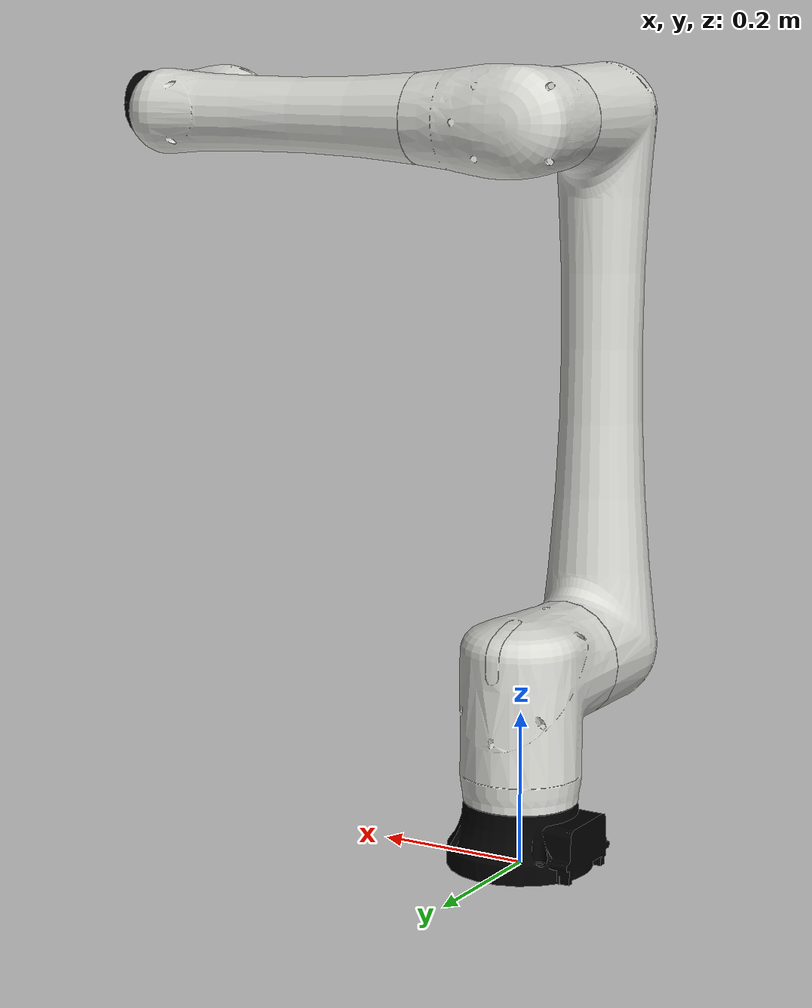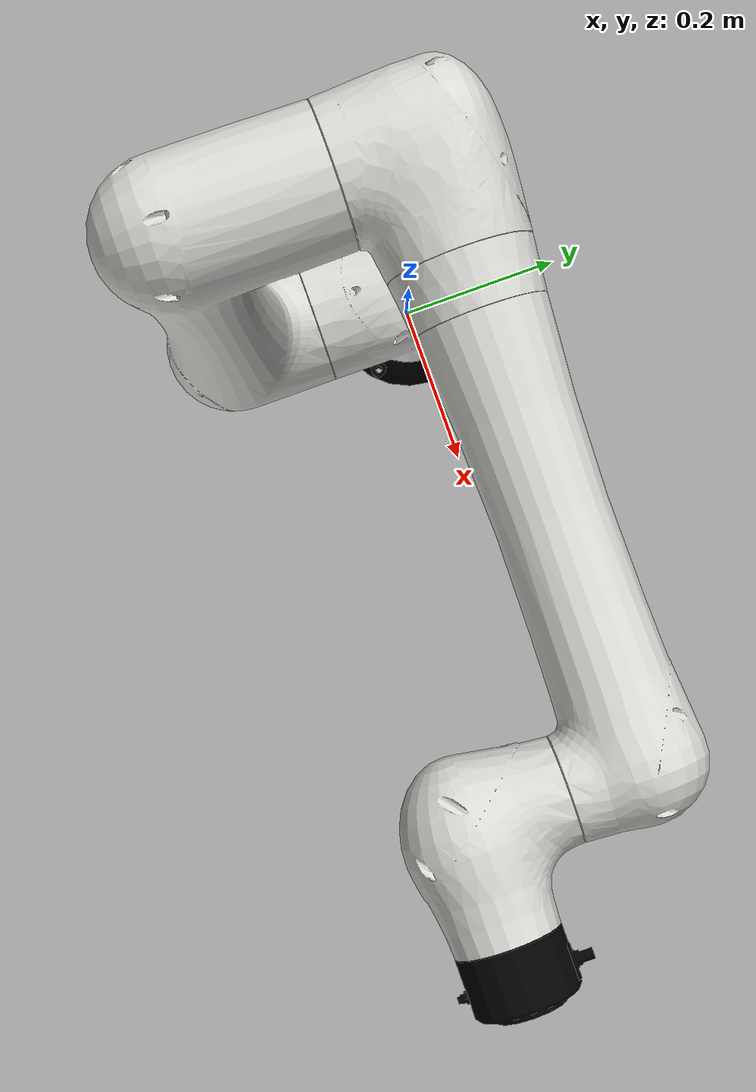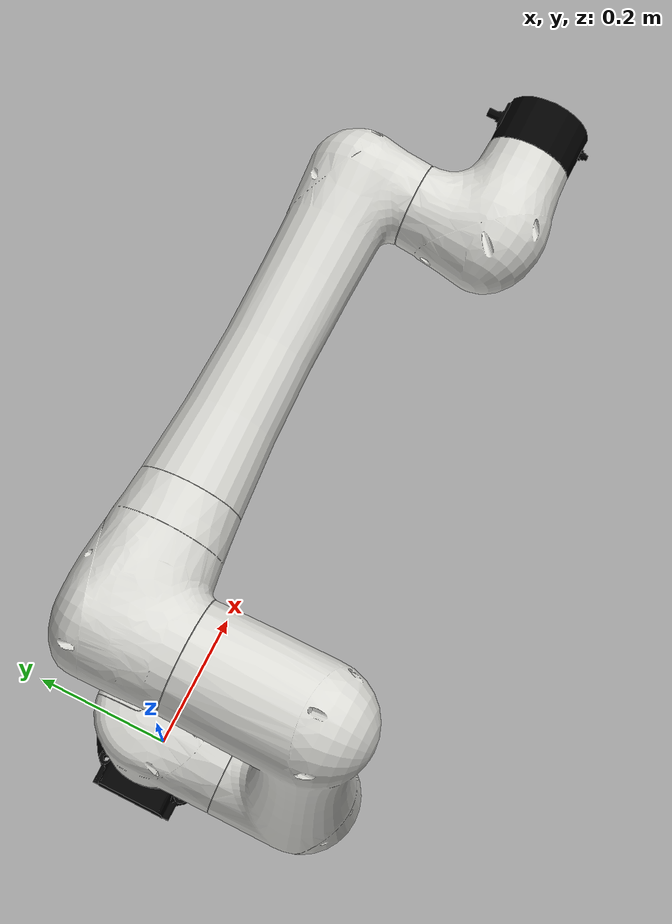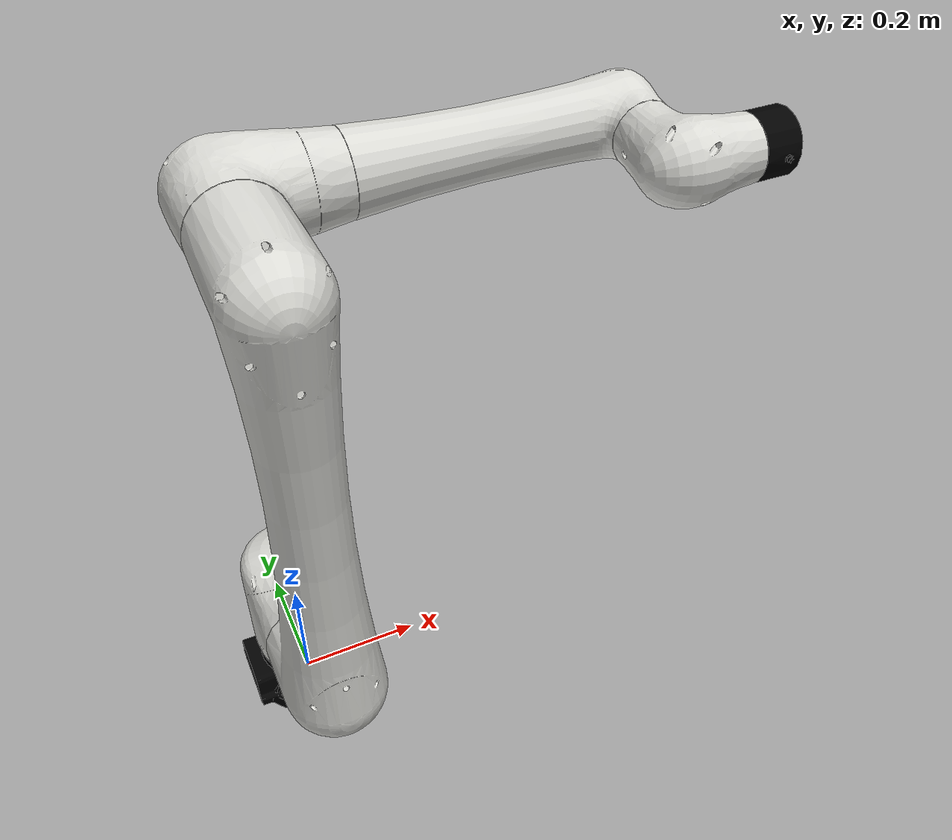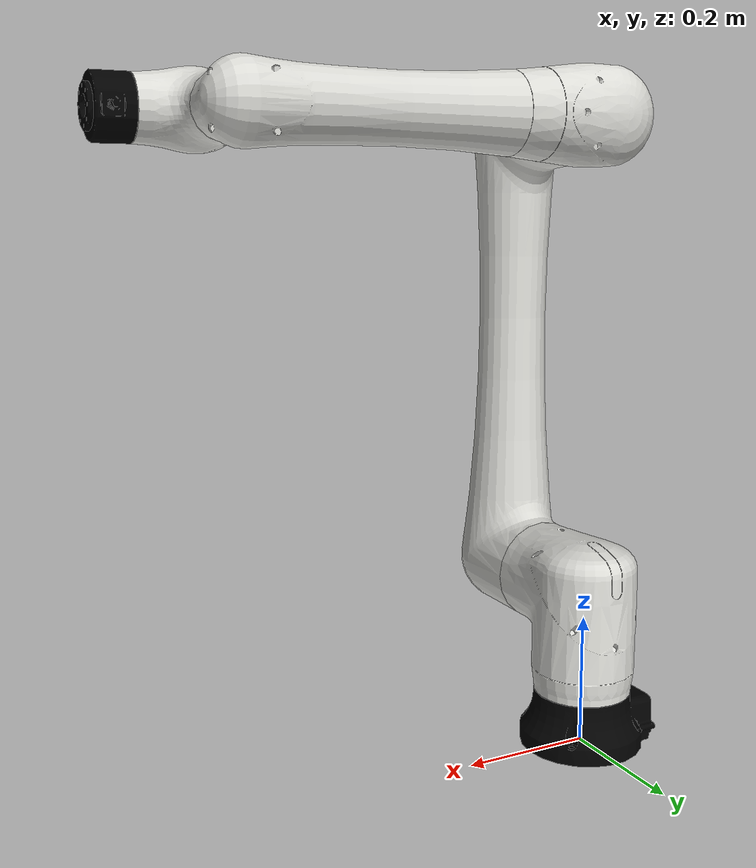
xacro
<?xml version="1.0"?>
<robot xmlns:xacro="http://www.ros.org/wiki/xacro" name="crx20ia_l">
    <xacro:arg name="initial_positions_file" default="initial_positions.yaml" />

    <!-- Import crx20ia_l urdf file -->
    <xacro:include filename="$(find crx_description)/urdf/crx20ia_l/crx20ia_l_sim.xacro" />

    <!-- Import control_xacro -->
    <xacro:include filename="crx20ia_l.ros2_control.xacro" />

    <xacro:crx20ia_l_ros2_control name="FakeSystem" initial_positions_file="$(arg initial_positions_file)"/>

</robot>

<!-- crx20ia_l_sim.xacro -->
<robot name="crx20ia_l" xmlns:xacro="http://wiki.ros.org/xacro">

  <xacro:arg name="use_mock_hardware" default="true" />

  <xacro:include filename="$(find crx_description)/urdf/crx20ia_l/crx20ia_l.urdf.xacro"/>

  <xacro:crx20ia_l use_mock_hardware="$(arg use_mock_hardware)"/>

</robot>

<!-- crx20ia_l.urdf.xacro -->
<robot xmlns:xacro="http://wiki.ros.org/xacro">

  <xacro:macro name="crx20ia_l"
               params="robot_ip=192.168.150.2
               read_only=false
               use_rmi=false
               use_mock_hardware=false">

  <xacro:include filename="$(find crx_description)/urdf/crx.ros2_control.xacro"/>
  <xacro:crx_ros2_control name="crx20"
                          use_mock_hardware="${use_mock_hardware}"
                          robot_ip="${robot_ip}"
                          read_only="${read_only}"
                          use_rmi="${use_rmi}" />

    <material name="FANUC_Black">
      <color rgba="0 0 0 1.0"/>
    </material>
    <material name="FANUC_Yellow">
      <color rgba="1.00 0.84 0.01 1.00"/>
    </material>
    <material name="FANUC_Green">
      <color rgba="0.43 0.68 0.26 1.00"/>
    </material>
    <material name="FANUC_White">
      <color rgba="0.84 0.84 0.82 1.00"/>
    </material>

    <xacro:property name="l_base" value="0.245"/>
    <xacro:property name="l_1" value="0.0"/>
    <xacro:property name="l_2" value="0.710"/>
    <xacro:property name="l_3" value="0.0"/>
    <xacro:property name="l_4" value="0.540"/>
    <xacro:property name="l_5" value="0.150"/>
    <xacro:property name="l_6" value="0.160"/>

    <xacro:property name="j1_v" value="80"/>
    <xacro:property name="j2_v" value="80"/>
    <xacro:property name="j3_v" value="120"/>
    <xacro:property name="j4_v" value="112.5"/>
    <xacro:property name="j5_v" value="90"/>
    <xacro:property name="j6_v" value="112.5"/>

    <xacro:property name="j1_u" value="179.9"/>
    <xacro:property name="j2_u" value="179.9"/>
    <xacro:property name="j3_u" value="270"/>
    <xacro:property name="j4_u" value="190"/>
    <xacro:property name="j5_u" value="179.9"/>
    <xacro:property name="j6_u" value="225"/>

    <xacro:property name="j1_l" value="-179.9"/>
    <xacro:property name="j2_l" value="-179.9"/>
    <xacro:property name="j3_l" value="-270"/>
    <xacro:property name="j4_l" value="-190"/>
    <xacro:property name="j5_l" value="-179.9"/>
    <xacro:property name="j6_l" value="-225"/>

    <xacro:property name="mz_1" value="0.1277"/>
    <xacro:property name="mz_2" value="0.245"/>
    <xacro:property name="mz_3" value="0.955"/>
    <xacro:property name="mx_1" value="0.540"/>
    <xacro:property name="mx_2" value="0.700"/>
    <xacro:property name="my_1" value="-0.150"/>

    <!-- links -->
    <link name="base_link">
      <visual>
      	<origin xyz="0 0 0" rpy="0 0 0"/>
      	<geometry>
      	  <mesh filename="package://crx_description/meshes/crx20ia_l/visual/base.stl" scale="0.001 0.001 0.001"/>
      	</geometry>
      	<material name="FANUC_Black"/>
      </visual>
      <collision>
      	<origin xyz="0 0 0" rpy="0 0 0"/>
      	<geometry>
      	  <mesh filename="package://crx_description/meshes/crx20ia_l/collision/base.stl" scale="0.001 0.001 0.001"/>
      	</geometry>
      </collision>
    </link>

    <link name="J1_link">
      <visual>
        <origin xyz="0 0 ${mz_1 - l_base}" rpy="0 0 0"/>
	       <geometry>
	         <mesh filename="package://crx_description/meshes/crx20ia_l/visual/j1.stl" scale="0.001 0.001 0.001"/>
    	   </geometry>
        <material name="FANUC_White"/>
      </visual>
      <collision>
        <origin xyz="0 0 ${mz_1 - l_base}" rpy="0 0 0"/>
    	  <geometry>
          <mesh filename="package://crx_description/meshes/crx20ia_l/collision/j1.stl" scale="0.001 0.001 0.001"/>
        </geometry>
      </collision>
    </link>

    <link name="J2_link">
      <visual>
        <origin xyz="-${l_1} 0 ${mz_2 - l_base}" rpy="0 0 0"/>
      	<geometry>
          <mesh filename="package://crx_description/meshes/crx20ia_l/visual/j2.stl" scale="0.001 0.001 0.001"/>
        </geometry>
        <material name="FANUC_White"/>
      </visual>
      <collision>
        <origin xyz="-${l_1} 0 ${mz_2 - l_base}" rpy="0 0 0"/>
        <geometry>
          <mesh filename="package://crx_description/meshes/crx20ia_l/collision/j2.stl" scale="0.001 0.001 0.001"/>
        </geometry>
      </collision>
    </link>

    <link name="J3_link">
      <visual>
        <origin xyz="-${l_1} 0 ${mz_3 - l_base - l_2}" rpy="0 0 0"/>
        <geometry>
          <mesh filename="package://crx_description/meshes/crx20ia_l/visual/j3.stl" scale="0.001 0.001 0.001"/>
        </geometry>
        <material name="FANUC_White"/>
      </visual>
      <collision>
        <origin xyz="-${l_1} 0 ${mz_3 - l_base - l_2}" rpy="0 0 0"/>
        <geometry>
          <mesh filename="package://crx_description/meshes/crx20ia_l/collision/j3.stl" scale="0.001 0.001 0.001"/>
        </geometry>
      </collision>
    </link>

    <link name="J4_link">
      <visual>
        <origin xyz="${mx_1 - l_1} 0 ${mz_3 - l_base - l_2 - l_3}" rpy="0 0 0"/>
        <geometry>
          <mesh filename="package://crx_description/meshes/crx20ia_l/visual/j4.stl" scale="0.001 0.001 0.001"/>
        </geometry>
        <material name="FANUC_White"/>
      </visual>
      <collision>
        <origin xyz="${mx_1 - l_1} 0 ${mz_3 - l_base - l_2 - l_3}" rpy="0 0 0"/>
        <geometry>
          <mesh filename="package://crx_description/meshes/crx20ia_l/collision/j4.stl" scale="0.001 0.001 0.001"/>
        </geometry>
      </collision>
    </link>

    <link name="J5_link">
      <visual>
        <origin xyz="${mx_1 -l_1 - l_4} ${my_1} ${mz_3 - l_base - l_2 - l_3}" rpy="0 0 0"/>
        <geometry>
          <mesh filename="package://crx_description/meshes/crx20ia_l/visual/j5.stl" scale="0.001 0.001 0.001"/>
        </geometry>
        <material name="FANUC_White"/>
      </visual>
      <collision>
        <origin xyz="${mx_1 -l_1 - l_4} ${my_1} ${mz_3 - l_base - l_2 - l_3}" rpy="0 0 0"/>
        <geometry>
          <mesh filename="package://crx_description/meshes/crx20ia_l/collision/j5.stl" scale="0.001 0.001 0.001"/>
        </geometry>
      </collision>
    </link>

    <link name="J6_link">
      <visual>
        <origin xyz="${mx_2 -l_1 - l_4} ${my_1 + l_5} ${mz_3 - l_base - l_2 - l_3}" rpy="0 0 0"/>
        <geometry>
          <mesh filename="package://crx_description/meshes/crx20ia_l/visual/j6.stl" scale="0.001 0.001 0.001"/>
        </geometry>
        <material name="FANUC_Black"/>
      </visual>
      <collision>
        <origin xyz="${mx_2 -l_1 - l_4} ${my_1 + l_5} ${mz_3 - l_base - l_2 - l_3}" rpy="0 0 0"/>
        <geometry>
          <mesh filename="package://crx_description/meshes/crx20ia_l/collision/j6.stl" scale="0.001 0.001 0.001"/>
        </geometry>
      </collision>
    </link>

    <!-- joints -->
    <joint name="J1" type="revolute">
      <origin xyz="0 0 ${l_base}" rpy="0 0 0"/>
      <parent link="base_link"/>
      <child link="J1_link"/>
      <axis xyz="0 0 1"/>
      <limit lower="${j1_l * pi / 180}" upper="${j1_u * pi / 180}" effort="0" velocity="${j1_v * pi / 180}"/>
    </joint>

    <joint name="J2" type="revolute">
      <origin xyz="${l_1} 0 0" rpy="0 0 0"/>
      <parent link="J1_link"/>
      <child link="J2_link"/>
      <axis xyz="0 1 0"/>
      <limit lower="${j2_l * pi / 180}" upper="${j2_u * pi / 180}" effort="0" velocity="${j2_v * pi / 180}"/>
    </joint>

    <joint name="J3" type="revolute">
      <origin xyz="0 0 ${l_2}" rpy="0 0 0"/>
      <parent link="J2_link"/>
      <child link="J3_link"/>
      <axis xyz="0 -1 0"/>
      <limit lower="${j3_l * pi / 180}" upper="${j3_u * pi / 180}" effort="0" velocity="${j3_v * pi / 180}"/>
    </joint>

    <joint name="J4" type="revolute">
      <origin xyz="0 0 ${l_3}" rpy="0 0 0"/>
      <parent link="J3_link"/>
      <child link="J4_link"/>
      <axis xyz="-1 0 0"/>
      <limit lower="${j4_l * pi / 180}" upper="${j4_u * pi / 180}" effort="0" velocity="${j4_v * pi / 180}"/>
    </joint>

    <joint name="J5" type="revolute">
      <origin xyz="${l_4} 0 0" rpy="0 0 0"/>
      <parent link="J4_link"/>
      <child link="J5_link"/>
      <axis xyz="0 -1 0"/>
      <limit lower="${j5_l * pi / 180}" upper="${j5_u * pi / 180}" effort="0" velocity="${j5_v * pi / 180}"/>
    </joint>

    <joint name="J6" type="revolute">
      <origin xyz="0 -${l_5} 0" rpy="0 0 0"/>
      <parent link="J5_link"/>
      <child link="J6_link"/>
      <axis xyz="-1 0 0"/>
      <limit lower="${j6_l * pi / 180}" upper="${j6_u * pi / 180}" effort="0" velocity="${j6_v * pi / 180}"/>
    </joint>

    <!-- world coords -->
    <link name="wbase" />
    <joint name="base_link-wbase" type="fixed">
      <origin xyz="0 0 ${l_base}" rpy="0 0 0"/>
      <parent link="base_link"/>
      <child link="wbase"/>
    </joint>

    <!-- flange coords -->
    <link name="flange" />
    <joint name="J6-flange" type="fixed">
      <origin xyz="${l_6} 0 0" rpy="0 0 0" />
      <parent link="J6_link" />
      <child link="flange" />
    </joint>

    <!-- flange1 coords -->
    <link name="flange1" />
    <joint name="flange-flange1" type="fixed">
      <origin xyz="0 0 0" rpy="0 ${pi/2} 0" />
      <parent link="flange" />
      <child link="flange1" />
    </joint>

    <!-- tcp coords -->
    <link name="tcp" />
    <joint name="flange1-tcp" type="fixed">
      <origin xyz="0 0 0" rpy="0 0 0" />
      <parent link="flange1" />
      <child link="tcp" />
    </joint>

    <!-- tcp right coord -->
    <link name="tcp_right" />
    <joint name="tcp-tcp_right" type="fixed">
      <origin xyz="0 0.012 0.013" rpy="0 0 0" />
      <parent link="tcp" />
      <child link="tcp_right" />
    </joint>

    <!-- tcp left coord -->
    <link name="tcp_left" />
    <joint name="tcp-tcp_left" type="fixed">
      <origin xyz="0 -0.012 0.013" rpy="0 0 0" />
      <parent link="tcp" />
      <child link="tcp_left" />
    </joint>

  </xacro:macro>
</robot>
